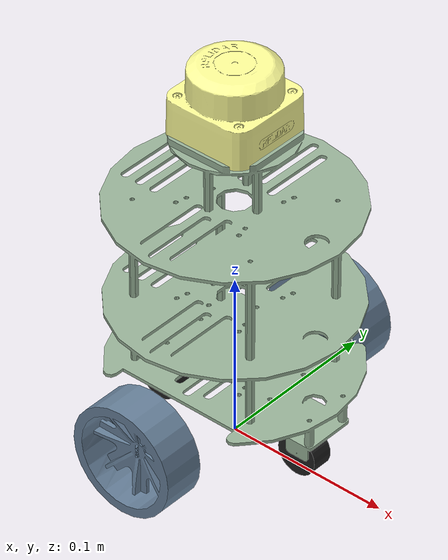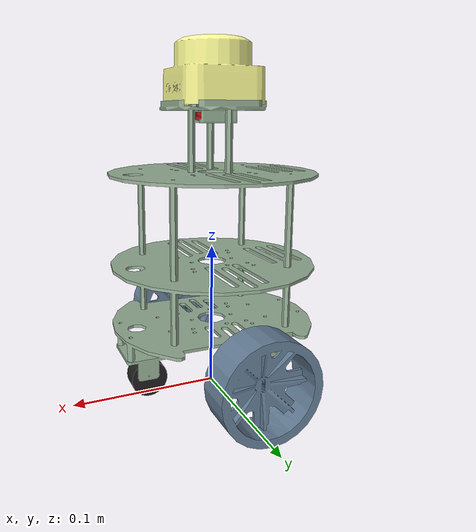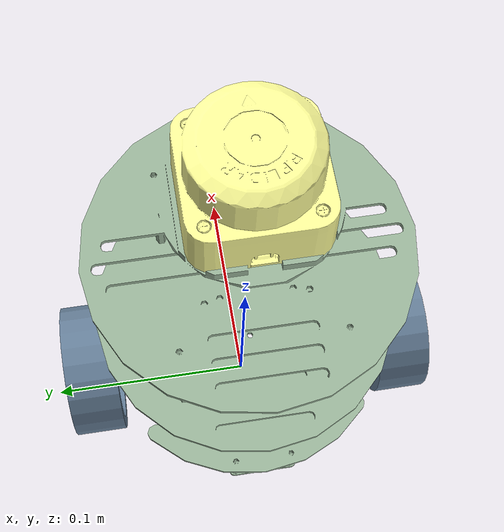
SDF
<?xml version="1.0" ?>
<sdf version='1.6'>
  <model name='my_robot'>
    <link name='base_footprint'>
      <inertial>
        <pose>0 0 0.074736 0 -0 0</pose>
        <mass>1500.15</mass>
        <inertia>
          <ixx>7.41805</ixx>
          <ixy>0</ixy>
          <ixz>-1.38778e-17</ixz>
          <iyy>8.59417</iyy>
          <iyz>0</iyz>
          <izz>4.48189</izz>
        </inertia>
      </inertial>
      <collision name='base_footprint_fixed_joint_lump__base_link_collision'>
        <pose>0 0 0.10525 0 -0 0</pose>
        <geometry>
          <cylinder>
            <length>0.1855</length>
            <radius>0.07</radius>
          </cylinder>
        </geometry>
        <surface>
          <contact>
            <ode/>
          </contact>
          <friction>
            <ode/>
          </friction>
        </surface>
      </collision>
      <collision name='base_footprint_fixed_joint_lump__front_caster_wheel_link_collision_1'>
        <pose>0.0485 0 0.01267 0 -0 0</pose>
        <geometry>
          <sphere>
            <radius>0.0125</radius>
          </sphere>
        </geometry>
        <surface>
          <contact>
            <ode/>
          </contact>
          <friction>
            <ode/>
          </friction>
        </surface>
      </collision>
      <collision name='base_footprint_fixed_joint_lump__bno055_collision_2'>
        <pose>0 0 0.1885 0 -0 1.5708</pose>
        <geometry>
          <box>
            <size>0.02 0.025 0.0045</size>
          </box>
        </geometry>
      </collision>
      <collision name='base_footprint_fixed_joint_lump__laser_collision_3'>
        <pose>0 0 0.21615 0 -0 0</pose>
        <geometry>
          <cylinder>
            <length>0.0413</length>
            <radius>0.0348</radius>
          </cylinder>
        </geometry>
      </collision>
      <collision name='base_footprint_fixed_joint_lump__rear_caster_wheel_link_collision_4'>
        <pose>-0.0485 0 0.01267 0 -0 0</pose>
        <geometry>
          <sphere>
            <radius>0.0125</radius>
          </sphere>
        </geometry>
        <surface>
          <contact>
            <ode/>
          </contact>
          <friction>
            <ode/>
          </friction>
        </surface>
      </collision>
      <visual name='base_footprint_fixed_joint_lump__base_link_visual'>
        <pose>0 0 0.15 1.5708 -0 1.5708</pose>
        <geometry>
          <mesh>
            <scale>0.001 0.001 0.001</scale>
            <uri>model://meshes/my_robot_base.stl</uri>
          </mesh>
        </geometry>
        <material>
          <ambient>0.6 0.7 0.6 1</ambient>
          <diffuse>0.6 0.7 0.6 1</diffuse>
          <specular>0.2 0.3 0.3 1</specular>
          <emissive>0.0 0.0 0.0 1</emissive>
        </material>
      </visual>
      <visual name='base_footprint_fixed_joint_lump__front_caster_wheel_link_visual_1'>
        <pose>0.0485 0.0065 0.01267 0 0 -1.5708</pose>
        <geometry>
          <mesh>
            <scale>0.001 0.001 0.001</scale>
            <uri>model://meshes/caster_wheel.stl</uri>
          </mesh>
        </geometry>
        <material>
          <script>
            <name>Gazebo/FlatBlack</name>
            <uri>file://media/materials/scripts/gazebo.material</uri>
          </script>
        </material>
      </visual>
      <visual name='base_footprint_fixed_joint_lump__bno055_visual_2'>
        <pose>0 0 0.18625 0 -0 0</pose>
        <geometry>
          <mesh>
            <scale>0.001 0.001 0.001</scale>
            <uri>model://meshes/adafruit_bno055_stemma_qt_1.stl</uri>
          </mesh>
        </geometry>
        <material>
          <ambient>0.8 0.1 0.1 1</ambient>
          <diffuse>0.8 0.1 0.1 1</diffuse>
          <specular>0.3 0.1 0.1 1</specular>
          <emissive>0.1 0.0 0.0 1</emissive>
        </material>
      </visual>
      <visual name='base_footprint_fixed_joint_lump__laser_visual_3'>
        <pose>0 0 0.1955 0 -0 0</pose>
        <geometry>
          <mesh>
            <scale>0.001 0.001 0.001</scale>
            <uri>model://meshes/c1m1_appearance_v2_20230926_3d_.stl</uri>
          </mesh>
        </geometry>
        <material>
          <ambient>1.0 1.0 0.6 1</ambient>
          <diffuse>1.0 1.0 0.6 1</diffuse>
          <specular>0.2 0.2 0.1 1</specular>
          <emissive>0.1 0.1 0.0 1</emissive>
        </material>
      </visual>
      <visual name='base_footprint_fixed_joint_lump__rear_caster_wheel_link_visual_4'>
        <pose>-0.0485 0.0065 0.01267 0 0 -1.5708</pose>
        <geometry>
          <mesh>
            <scale>0.001 0.001 0.001</scale>
            <uri>model://meshes/caster_wheel.stl</uri>
          </mesh>
        </geometry>
        <material>
          <script>
            <name>Gazebo/FlatBlack</name>
            <uri>file://media/materials/scripts/gazebo.material</uri>
          </script>
        </material>
      </visual>
      <m1 value='10.0'/>
      <m2 value='10.0'/>
      <m1 value='10.0'/>
      <m2 value='10.0'/>
    </link>
    <joint name='base_left_wheel_joint' type='revolute'>
      <pose relative_to='base_footprint'>0 0.0775 0.033 1.5708 0 -0</pose>
      <parent>base_footprint</parent>
      <child>left_wheel_link</child>
      <axis>
        <xyz>0 0 -1</xyz>
        <limit>
          <lower>-1e+16</lower>
          <upper>1e+16</upper>
        </limit>
        <dynamics>
          <spring_reference>0</spring_reference>
          <spring_stiffness>0</spring_stiffness>
        </dynamics>
      </axis>
    </joint>
    <link name='left_wheel_link'>
      <pose relative_to='base_left_wheel_joint'>0 0 0 0 -0 0</pose>
      <inertial>
        <pose>0 0 0 0 -0 0</pose>
        <mass>500</mass>
        <inertia>
          <ixx>0.162167</ixx>
          <ixy>0</ixy>
          <ixz>0</ixz>
          <iyy>0.162167</iyy>
          <iyz>0</iyz>
          <izz>0.27225</izz>
        </inertia>
      </inertial>
      <collision name='left_wheel_link_collision'>
        <pose>0 0 0 0 -0 0</pose>
        <geometry>
          <sphere>
            <radius>0.033</radius>
          </sphere>
        </geometry>
        <surface>
          <contact>
            <ode/>
          </contact>
          <friction>
            <ode/>
          </friction>
        </surface>
      </collision>
      <visual name='left_wheel_link_visual'>
        <pose>0 0 -0.0125 1.5708 -0 0</pose>
        <geometry>
          <mesh>
            <scale>0.001 0.001 0.001</scale>
            <uri>model://meshes/wheel.stl</uri>
          </mesh>
        </geometry>
        <material>
          <ambient>0.4 0.5 0.6 1</ambient>
          <diffuse>0.4 0.5 0.6 1</diffuse>
          <specular>0.2 0.3 0.4 1</specular>
          <emissive>0.0 0.0 0.0 1</emissive>
        </material>
      </visual>
      <m1 value='10.0'/>
      <m2 value='10.0'/>
    </link>
    <joint name='base_right_wheel_joint' type='revolute'>
      <pose relative_to='base_footprint'>0 -0.0775 0.033 -1.5708 0 0</pose>
      <parent>base_footprint</parent>
      <child>right_wheel_link</child>
      <axis>
        <xyz>0 0 1</xyz>
        <limit>
          <lower>-1e+16</lower>
          <upper>1e+16</upper>
        </limit>
        <dynamics>
          <spring_reference>0</spring_reference>
          <spring_stiffness>0</spring_stiffness>
        </dynamics>
      </axis>
    </joint>
    <link name='right_wheel_link'>
      <pose relative_to='base_right_wheel_joint'>0 0 0 0 -0 0</pose>
      <inertial>
        <pose>0 0 0 0 -0 0</pose>
        <mass>500</mass>
        <inertia>
          <ixx>0.162167</ixx>
          <ixy>0</ixy>
          <ixz>0</ixz>
          <iyy>0.162167</iyy>
          <iyz>0</iyz>
          <izz>0.27225</izz>
        </inertia>
      </inertial>
      <collision name='right_wheel_link_collision'>
        <pose>0 0 0 0 -0 0</pose>
        <geometry>
          <sphere>
            <radius>0.033</radius>
          </sphere>
        </geometry>
        <surface>
          <contact>
            <ode/>
          </contact>
          <friction>
            <ode/>
          </friction>
        </surface>
      </collision>
      <visual name='right_wheel_link_visual'>
        <pose>0 0 -0.0125 1.5708 -0 0</pose>
        <geometry>
          <mesh>
            <scale>0.001 0.001 0.001</scale>
            <uri>model://meshes/wheel.stl</uri>
          </mesh>
        </geometry>
        <material>
          <ambient>0.4 0.5 0.6 1</ambient>
          <diffuse>0.4 0.5 0.6 1</diffuse>
          <specular>0.2 0.3 0.4 1</specular>
          <emissive>0.0 0.0 0.0 1</emissive>
        </material>
      </visual>
      <m1 value='10.0'/>
      <m2 value='10.0'/>
    </link>

  <plugin name="diff_drive_controller" filename="libgazebo_ros_diff_drive.so">
    <ros>
      <namespace>/my_robot</namespace>
      <remapping>cmd_vel:=/cmd_vel_out</remapping>
      <remapping>odom:=/odom</remapping>
    </ros>
    <robotNamespace>/my_robot</robotNamespace>
    <left_joint>base_left_wheel_joint</left_joint>
    <right_joint>base_right_wheel_joint</right_joint>
    <wheel_separation>0.155</wheel_separation>
    <wheel_diameter>0.066</wheel_diameter>
    <update_rate>100.0</update_rate>
    <max_velocity>1.0</max_velocity>
  </plugin>

  </model>
</sdf>
